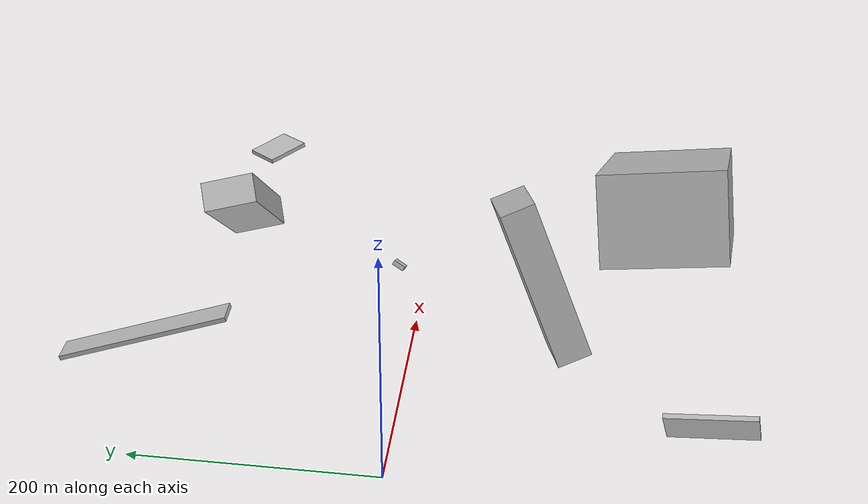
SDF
<sdf version="1.6">
 <world name="default">
  <scene>
   <sky><clouds><speed>12</speed></clouds></sky>
   <ambient>0.4 0.4 0.4 1</ambient>
   <background>0.7 0.7 0.7 1</background>
   <shadows>1</shadows>
  </scene>
  <gravity>0 0 -9.8066</gravity>
  <magnetic_field>6e-06 2.3e-05 -4.2e-05</magnetic_field>
  <physics default="0" name="default_physics" type="ode">
   <ode>
    <solver>
     <type>quick</type>
     <iters>10</iters>
     <sor>1.0</sor>
     <use_dynamic_moi_rescaling>0</use_dynamic_moi_rescaling>
    </solver>
    <constraints>
     <cfm>0</cfm>
     <erp>0.2</erp>
     <contact_max_correcting_vel>100</contact_max_correcting_vel>
     <contact_surface_layer>0.001</contact_surface_layer>
    </constraints>
   </ode>
   <max_step_size>0.004</max_step_size>
   <real_time_factor>1</real_time_factor>
   <real_time_update_rate>250</real_time_update_rate>
  </physics>
  <light name="sun" type="directional">
   <pose>0 0 10 0 0 0</pose>
   <diffuse>0.8 0.8 0.8 1</diffuse>
   <specular>0.2 0.2 0.2 1</specular>
   <attenuation>
    <range>1000</range>
    <constant>0.9</constant>
    <linear>0.01</linear>
    <quadratic>0.001</quadratic>
   </attenuation>
   <direction>-0.5 0.1 -0.9</direction>
  </light>
  <model name="building_1">
   <static>0</static>
   <pose>235.13274061433253 20.77001962157997 32.57651475601508 -2.3615402503267933 -0.9587461222479312 -0.9978462790252881</pose>
   <link name="link">
    <gravity>0</gravity>
    <pose>0 0 4.5 0 0 0</pose>
    <collision name="collision"><geometry><box><size>4 11 9</size></box></geometry></collision>
    <visual name="visual">
     <cast_shadows>0</cast_shadows>
     <geometry><box><size>4 11 9</size></box></geometry>
     <material>
      <script>
       <uri>model://HANNAS_wall/materials/scripts</uri>
       <uri>model://HANNAS_wall/materials/textures</uri>
       <name>vrc/HANNAS_wall</name>
      </script>
     </material>
    </visual>
   </link>
  </model>
  <model name="building_2">
   <static>0</static>
   <pose>184.10953205916394 -100.8413798616017 77.1292553397799 1.3111016019779715 -0.33643040493998133 -1.2469265232891957</pose>
   <link name="link">
    <gravity>0</gravity>
    <pose>0 0 24.5 0 0 0</pose>
    <collision name="collision"><geometry><box><size>29 139 49</size></box></geometry></collision>
    <visual name="visual">
     <cast_shadows>0</cast_shadows>
     <geometry><box><size>29 139 49</size></box></geometry>
     <material>
      <script>
       <uri>model://HANNAS_wall/materials/scripts</uri>
       <uri>model://HANNAS_wall/materials/textures</uri>
       <name>vrc/HANNAS_wall</name>
      </script>
     </material>
    </visual>
   </link>
  </model>
  <model name="building_3">
   <static>0</static>
   <pose>277.6603175874286 144.91062343191672 65.61887191134542 1.8850882374822424 -0.7545120021101214 3.0607989192580956</pose>
   <link name="link">
    <gravity>0</gravity>
    <pose>0 0 23.5 0 0 0</pose>
    <collision name="collision"><geometry><box><size>99 26 47</size></box></geometry></collision>
    <visual name="visual">
     <cast_shadows>0</cast_shadows>
     <geometry><box><size>99 26 47</size></box></geometry>
     <material>
      <script>
       <uri>model://HANNAS_wall/materials/scripts</uri>
       <uri>model://HANNAS_wall/materials/textures</uri>
       <name>vrc/HANNAS_wall</name>
      </script>
     </material>
    </visual>
   </link>
  </model>
  <model name="building_4">
   <static>0</static>
   <pose>108.23278090790512 217.0047866611566 27.76870572475384 1.8232695068881628 -1.2518736547021347 1.3849385997482033</pose>
   <link name="link">
    <gravity>0</gravity>
    <pose>0 0 11.5 0 0 0</pose>
    <collision name="collision"><geometry><box><size>4 150 23</size></box></geometry></collision>
    <visual name="visual">
     <cast_shadows>0</cast_shadows>
     <geometry><box><size>4 150 23</size></box></geometry>
     <material>
      <script>
       <uri>model://HANNAS_wall/materials/scripts</uri>
       <uri>model://HANNAS_wall/materials/textures</uri>
       <name>vrc/HANNAS_wall</name>
      </script>
     </material>
    </visual>
   </link>
  </model>
  <model name="building_5">
   <static>0</static>
   <pose>275.5773139685008 -213.33382164289299 101.9559061469208 -0.39413531353373327 -1.1487552428154224 0.29791705901121396</pose>
   <link name="link">
    <gravity>0</gravity>
    <pose>0 0 75.0 0 0 0</pose>
    <collision name="collision"><geometry><box><size>73 98 150</size></box></geometry></collision>
    <visual name="visual">
     <cast_shadows>0</cast_shadows>
     <geometry><box><size>73 98 150</size></box></geometry>
     <material>
      <script>
       <uri>model://HANNAS_wall/materials/scripts</uri>
       <uri>model://HANNAS_wall/materials/textures</uri>
       <name>vrc/HANNAS_wall</name>
      </script>
     </material>
    </visual>
   </link>
  </model>
  <model name="building_6">
   <static>0</static>
   <pose>383.19840760992037 -263.63958881035256 25.25294037749697 2.445661413515719 -0.38015401500078805 2.7450624576336993</pose>
   <link name="link">
    <gravity>0</gravity>
    <pose>0 0 2.0 0 0 0</pose>
    <collision name="collision"><geometry><box><size>10 33 4</size></box></geometry></collision>
    <visual name="visual">
     <cast_shadows>0</cast_shadows>
     <geometry><box><size>10 33 4</size></box></geometry>
     <material>
      <script>
       <uri>model://HANNAS_wall/materials/scripts</uri>
       <uri>model://HANNAS_wall/materials/textures</uri>
       <name>vrc/HANNAS_wall</name>
      </script>
     </material>
    </visual>
   </link>
  </model>
  <model name="building_7">
   <static>0</static>
   <pose>59.10091249601552 -244.30244203168166 29.5040534411962 2.087552031501488 -0.14947177174328213 -1.6732323263140916</pose>
   <link name="link">
    <gravity>0</gravity>
    <pose>0 0 2.0 0 0 0</pose>
    <collision name="collision"><geometry><box><size>71 40 4</size></box></geometry></collision>
    <visual name="visual">
     <cast_shadows>0</cast_shadows>
     <geometry><box><size>71 40 4</size></box></geometry>
     <material>
      <script>
       <uri>model://HANNAS_wall/materials/scripts</uri>
       <uri>model://HANNAS_wall/materials/textures</uri>
       <name>vrc/HANNAS_wall</name>
      </script>
     </material>
    </visual>
   </link>
  </model>
  <model name="building_8">
   <static>0</static>
   <pose>444.8463867919988 192.1962443854788 10.980300460960274 0.8304096082774067 -1.4245152941434254 1.5889184554357045</pose>
   <link name="link">
    <gravity>0</gravity>
    <pose>0 0 21.0 0 0 0</pose>
    <collision name="collision"><geometry><box><size>4 36 42</size></box></geometry></collision>
    <visual name="visual">
     <cast_shadows>0</cast_shadows>
     <geometry><box><size>4 36 42</size></box></geometry>
     <material>
      <script>
       <uri>model://HANNAS_wall/materials/scripts</uri>
       <uri>model://HANNAS_wall/materials/textures</uri>
       <name>vrc/HANNAS_wall</name>
      </script>
     </material>
    </visual>
   </link>
  </model>
 </world>
</sdf>
